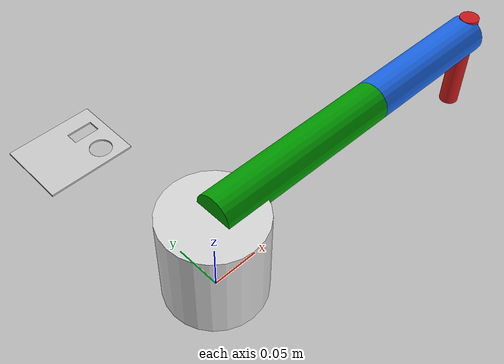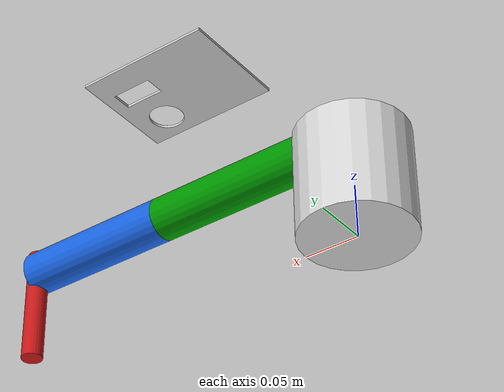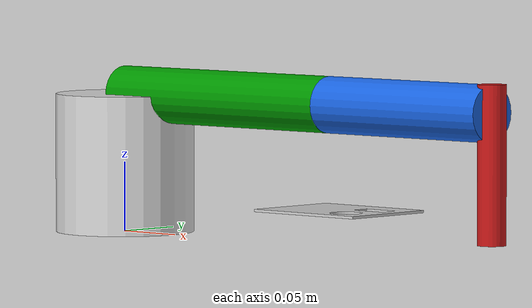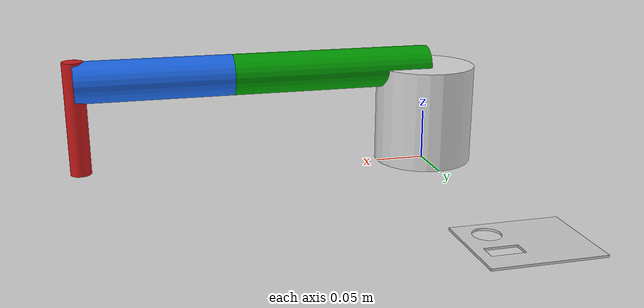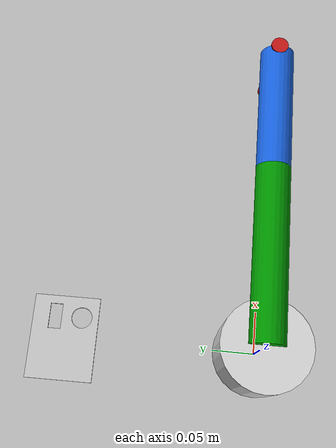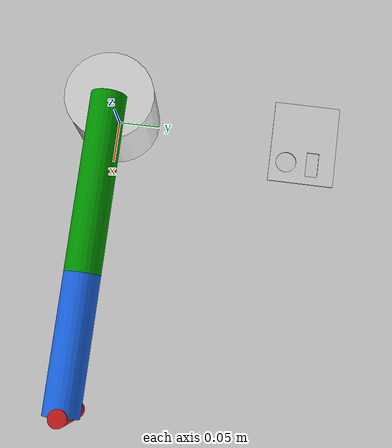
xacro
<?xml version="1.0"?>
<robot xmlns:xacro="http://www.ros.org/wiki/xacro" name="scara_min_5links">

  <!-- ===== PROPIEDADES (m) ===== -->
  <xacro:property name="brad" value="${5/100}"/>      <!-- base: radio -->
  <xacro:property name="blen" value="${10/100}"/>     <!-- base: alto -->

  <xacro:property name="l1x" value="${20/100}"/>
  <xacro:property name="l2x" value="${15/100}"/>
  <xacro:property name="rod_r" value="${2/100}"/>     <!-- radio visual brazos -->

  <!-- Prismático (vástago que baja en -Z) -->
  <xacro:property name="tool_len" value="${11/100}"/>
  <xacro:property name="tool_rad" value="${1/100}"/>
  <xacro:property name="tool_offset" value="${2/100}"/>  <!-- offset +Z donde inicia el prismático -->
  <xacro:property name="tool_stroke" value="${max(0, blen + tool_offset - tool_len)}"/>
  <xacro:property name="eps" value="${0.0001}"/>

  <!-- Auxiliares (rad) -->
  <xacro:property name="half_pi" value="${1.57079632679}"/>   <!-- pi/2 -->
  <xacro:property name="rad120"  value="${half_pi*4/3}"/>     <!-- 2pi/3 -->

  <!-- ===== MALLA ESTÁTICA (pieza fija al mundo) ===== -->
  <xacro:property name="workpiece_mesh_file"  value="package://trayectoria_parcial/mesh/Test_1_Model.stl"/>
  <xacro:property name="workpiece_mesh_scale" value="0.001 0.001 0.001"/>  <!-- STL en mm -> m -->
  <!-- Ajusta estas dos para posicionar la pieza respecto a base_link -->
  <xacro:property name="workpiece_xyz"        value="0 0 0"/>
  <xacro:property name="workpiece_rpy"        value="0 0 0"/>

  <!-- ===== MACROS ===== -->
  <xacro:macro name="cyl_link" params="name radius length r g b a">
    <link name="${name}">
      <visual>
        <geometry><cylinder radius="${radius}" length="${length}"/></geometry>
        <origin xyz="0 0 0" rpy="0 0 0"/>
        <material name="${name}_mat"><color rgba="${r} ${g} ${b} ${a}"/></material>
      </visual>
      <collision>
        <geometry><cylinder radius="${radius}" length="${length}"/></geometry>
        <origin xyz="0 0 0" rpy="0 0 0"/>
      </collision>
      <inertial>
        <mass value="1"/><origin xyz="0 0 0"/>
        <inertia ixx="1" ixy="0" ixz="0" iyy="1" iyz="0" izz="1"/>
      </inertial>
    </link>
  </xacro:macro>

  <!-- cilindro horizontal a lo largo de X -->
  <xacro:macro name="rod_x" params="name L R r g b a">
    <link name="${name}">
      <visual>
        <geometry><cylinder radius="${R}" length="${L}"/></geometry>
        <origin xyz="${L/2} 0 0" rpy="0 ${half_pi} 0"/>
        <material name="${name}_mat"><color rgba="${r} ${g} ${b} ${a}"/></material>
      </visual>
      <collision>
        <geometry><cylinder radius="${R}" length="${L}"/></geometry>
        <origin xyz="${L/2} 0 0" rpy="0 ${half_pi} 0"/>
      </collision>
      <inertial>
        <mass value="1"/><origin xyz="0 0 0"/>
        <inertia ixx="1" ixy="0" ixz="0" iyy="1" iyz="0" izz="1"/>
      </inertial>
    </link>
  </xacro:macro>

  <!-- cilindro vertical anclado arriba (crece hacia -Z) -->
  <xacro:macro name="rod_z_top" params="name L R eps r g b a">
    <link name="${name}">
      <visual>
        <geometry><cylinder radius="${R}" length="${L}"/></geometry>
        <origin xyz="0 0 ${-L/2 + eps}" rpy="0 0 0"/>
        <material name="${name}_mat"><color rgba="${r} ${g} ${b} ${a}"/></material>
      </visual>
      <collision>
        <geometry><cylinder radius="${R}" length="${L}"/></geometry>
        <origin xyz="0 0 ${-L/2 + eps}" rpy="0 0 0"/>
      </collision>
      <inertial>
        <mass value="1"/><origin xyz="0 0 0"/>
        <inertia ixx="1" ixy="0" ixz="0" iyy="1" iyz="0" izz="1"/>
      </inertial>
    </link>
  </xacro:macro>

  <!-- ===== CADENA DEL ROBOT ===== -->
  <link name="base_link"/>

  <!-- base_cyl apoyada en z=0 -->
  <joint name="base_to_base_cyl_joint" type="fixed">
    <parent link="base_link"/>
    <child  link="base_cyl"/>
    <origin xyz="0 0 ${blen/2}" rpy="0 0 0"/>
  </joint>
  <xacro:cyl_link name="base_cyl" radius="${brad}" length="${blen}" r="0.85" g="0.85" b="0.85" a="1"/>

  <!-- J1: revoluta ±90° -->
  <joint name="joint1" type="revolute">
    <parent link="base_cyl"/>
    <child  link="link1"/>
    <origin xyz="0 0 ${blen/2}" rpy="0 0 0"/>
    <axis xyz="0 0 1"/>
    <limit lower="${-half_pi}" upper="${half_pi}" effort="50" velocity="1.0"/>
  </joint>
  <xacro:rod_x name="link1" L="${l1x}" R="${rod_r}" r="0.0" g="0.6" b="0.0" a="1"/>

  <!-- J2: revoluta ±120° -->
  <joint name="joint2" type="revolute">
    <parent link="link1"/>
    <child  link="link2"/>
    <origin xyz="${l1x} 0 0" rpy="0 0 0"/>
    <axis xyz="0 0 1"/>
    <limit lower="${-rad120}" upper="${rad120}" effort="50" velocity="1.0"/>
  </joint>
  <xacro:rod_x name="link2" L="${l2x}" R="${rod_r}" r="0.1" g="0.4" b="0.9" a="1"/>

  <!-- J3 prismático: link hijo = base_tool -->
  <joint name="joint_tool" type="prismatic">
    <parent link="link2"/>
    <child  link="base_tool"/>
    <origin xyz="${l2x} 0 ${tool_offset}" rpy="0 0 0"/>
    <axis xyz="0 0 -1"/>
    <limit lower="0.0" upper="${tool_stroke}" effort="50" velocity="0.5"/>
  </joint>
  <xacro:rod_z_top name="base_tool" L="${tool_len}" R="${tool_rad}" eps="${eps}"
                   r="0.8" g="0.1" b="0.1" a="1"/>

  <!-- ===== PIEZA FIJA (NO SE MUEVE CON EL ROBOT) ===== -->
  <link name="workpiece_mesh">
    <visual>
      <geometry>
        <mesh filename="${workpiece_mesh_file}" scale="${workpiece_mesh_scale}"/>
      </geometry>
      <origin xyz="0 0 0" rpy="0 0 0"/>
      <material name="workpiece_mat">
        <color rgba="0.8 0.8 0.8 1.0"/>
      </material>
    </visual>
    <collision>
      <geometry>
        <mesh filename="${workpiece_mesh_file}" scale="${workpiece_mesh_scale}"/>
      </geometry>
      <origin xyz="0 0 0" rpy="0 0 0"/>
    </collision>
    <inertial>
      <mass value="0.1"/>
      <origin xyz="0 0 0"/>
      <inertia ixx="1e-4" ixy="0" ixz="0" iyy="1e-4" iyz="0" izz="1e-4"/>
    </inertial>
  </link>

  <joint name="workpiece_to_base" type="fixed">
    <parent link="base_link"/>
    <child  link="workpiece_mesh"/>
    <!-- Ajusta la posición/orientación de la pieza aquí -->
    <origin xyz="${workpiece_xyz}" rpy="${workpiece_rpy}"/>
  </joint>

</robot>
